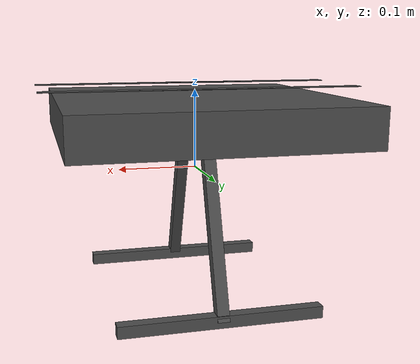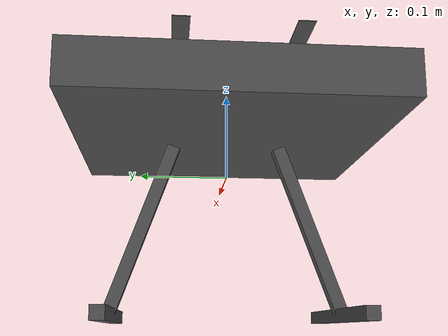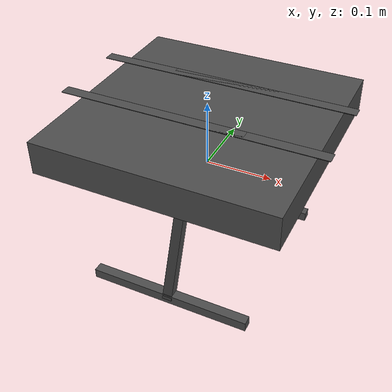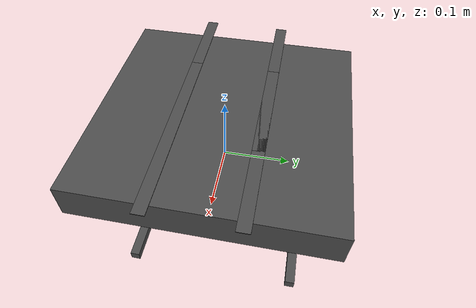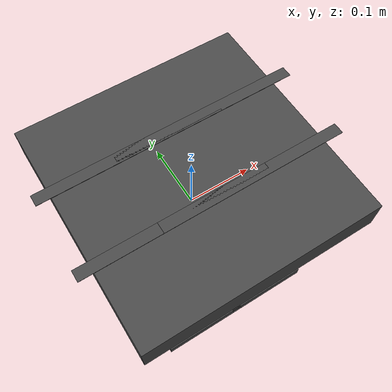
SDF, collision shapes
<?xml version="1.0" encoding="UTF-8"?>
<sdf version='1.9'>
  <model name='cognifly'>
    <include merge='true'>
      <uri>model://cognifly_base</uri>
    </include>
    <plugin filename="gz-sim-multicopter-motor-model-system" name="gz::sim::systems::MulticopterMotorModel">
      <jointName>rotor_0_joint</jointName>
      <linkName>rotor_0</linkName>
      <turningDirection>ccw</turningDirection>
      <timeConstantUp>0.0125</timeConstantUp>
      <timeConstantDown>0.025</timeConstantDown>
      <maxRotVelocity>1000.0</maxRotVelocity>
      <motorConstant>8.54858e-06</motorConstant>
      <momentConstant>0.016</momentConstant>
      <commandSubTopic>command/motor_speed</commandSubTopic>
      <motorNumber>0</motorNumber>
      <rotorDragCoefficient>8.06428e-05</rotorDragCoefficient>
      <rollingMomentCoefficient>1e-06</rollingMomentCoefficient>
      <rotorVelocitySlowdownSim>10</rotorVelocitySlowdownSim>
      <motorType>velocity</motorType>
    </plugin>
    <plugin filename="gz-sim-multicopter-motor-model-system" name="gz::sim::systems::MulticopterMotorModel">
      <jointName>rotor_1_joint</jointName>
      <linkName>rotor_1</linkName>
      <turningDirection>ccw</turningDirection>
      <timeConstantUp>0.0125</timeConstantUp>
      <timeConstantDown>0.025</timeConstantDown>
      <maxRotVelocity>1000.0</maxRotVelocity>
      <motorConstant>8.54858e-06</motorConstant>
      <momentConstant>0.016</momentConstant>
      <commandSubTopic>command/motor_speed</commandSubTopic>
      <motorNumber>1</motorNumber>
      <rotorDragCoefficient>8.06428e-05</rotorDragCoefficient>
      <rollingMomentCoefficient>1e-06</rollingMomentCoefficient>
      <rotorVelocitySlowdownSim>10</rotorVelocitySlowdownSim>
      <motorType>velocity</motorType>
    </plugin>
    <plugin filename="gz-sim-multicopter-motor-model-system" name="gz::sim::systems::MulticopterMotorModel">
      <jointName>rotor_2_joint</jointName>
      <linkName>rotor_2</linkName>
      <turningDirection>cw</turningDirection>
      <timeConstantUp>0.0125</timeConstantUp>
      <timeConstantDown>0.025</timeConstantDown>
      <maxRotVelocity>1000.0</maxRotVelocity>
      <motorConstant>8.54858e-06</motorConstant>
      <momentConstant>0.016</momentConstant>
      <commandSubTopic>command/motor_speed</commandSubTopic>
      <motorNumber>2</motorNumber>
      <rotorDragCoefficient>8.06428e-05</rotorDragCoefficient>
      <rollingMomentCoefficient>1e-06</rollingMomentCoefficient>
      <rotorVelocitySlowdownSim>10</rotorVelocitySlowdownSim>
      <motorType>velocity</motorType>
    </plugin>
    <plugin filename="gz-sim-multicopter-motor-model-system" name="gz::sim::systems::MulticopterMotorModel">
      <jointName>rotor_3_joint</jointName>
      <linkName>rotor_3</linkName>
      <turningDirection>cw</turningDirection>
      <timeConstantUp>0.0125</timeConstantUp>
      <timeConstantDown>0.025</timeConstantDown>
      <maxRotVelocity>1000.0</maxRotVelocity>
      <motorConstant>8.54858e-06</motorConstant>
      <momentConstant>0.016</momentConstant>
      <commandSubTopic>command/motor_speed</commandSubTopic>
      <motorNumber>3</motorNumber>
      <rotorDragCoefficient>8.06428e-05</rotorDragCoefficient>
      <rollingMomentCoefficient>1e-06</rollingMomentCoefficient>
      <rotorVelocitySlowdownSim>10</rotorVelocitySlowdownSim>
      <motorType>velocity</motorType>
    </plugin>
  </model>
</sdf>

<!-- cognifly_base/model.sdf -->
<sdf version='1.9'>
  <model name='cognifly_base'>
    <pose>0 0 0.06 0 0 0</pose>
    <self_collide>false</self_collide>
    <static>false</static>
    <link name="base_link">
      <inertial>
        <pose>0 0 -0.02 0 0 0</pose>
        <mass>0.250</mass>
        <inertia>
          <ixx>0.000677</ixx>
          <ixy>0</ixy>
          <ixz>0</ixz>
          <iyy>0.000677</iyy>
          <iyz>0</iyz>
          <izz>0.00125</izz>
        </inertia>
      </inertial>
      <gravity>true</gravity>
      <velocity_decay/>
      <visual name="base_link_visual">
        <pose>0 0 0 0 0 0</pose>
        <geometry>
          <mesh>
            <scale>1 1 1</scale>
            <uri>model://cognifly_base/meshes/Cognifly.dae</uri>
          </mesh>
        </geometry>
        <material>
          <script>
            <name>Gazebo/DarkGrey</name>
            <uri>file://media/materials/scripts/gazebo.material</uri>
          </script>
        </material>
      </visual>
      <collision name="base_link_collision_0">
        <pose>0 0 .007 0 0 0</pose>
        <geometry>
          <box>
            <size>0.35355339059327373 0.35355339059327373 0.05</size>
          </box>
        </geometry>
        <surface>
          <contact>
            <ode>
              <min_depth>0.001</min_depth>
              <max_vel>0</max_vel>
            </ode>
          </contact>
          <friction>
            <ode/>
          </friction>
        </surface>
      </collision>
      <collision name="base_link_collision_1">
        <pose>0 -0.098 -.123 -0.35 0 0</pose>
        <geometry>
          <box>
            <size>0.015 0.015 0.21</size>
          </box>
        </geometry>
        <surface>
          <contact>
            <ode>
              <min_depth>0.001</min_depth>
              <max_vel>0</max_vel>
            </ode>
          </contact>
          <friction>
            <ode/>
          </friction>
        </surface>
      </collision>
      <collision name="base_link_collision_2">
        <pose>0 0.098 -.123 0.35 0 0</pose>
        <geometry>
          <box>
            <size>0.015 0.015 0.21</size>
          </box>
        </geometry>
        <surface>
          <contact>
            <ode>
              <min_depth>0.001</min_depth>
              <max_vel>0</max_vel>
            </ode>
          </contact>
          <friction>
            <ode/>
          </friction>
        </surface>
      </collision>
      <collision name="base_link_collision_3">
        <pose>0 -0.132 -.2195 0 0 0</pose>
        <geometry>
          <box>
            <size>0.25 0.015 0.015</size>
          </box>
        </geometry>
        <surface>
          <contact>
            <ode>
              <min_depth>0.001</min_depth>
              <max_vel>0</max_vel>
            </ode>
          </contact>
          <friction>
            <ode/>
          </friction>
        </surface>
      </collision>
      <collision name="base_link_collision_4">
        <pose>0 0.132 -.2195 0 0 0</pose>
        <geometry>
          <box>
            <size>0.25 0.015 0.015</size>
          </box>
        </geometry>
        <surface>
          <contact>
            <ode>
              <min_depth>0.001</min_depth>
              <max_vel>0</max_vel>
            </ode>
          </contact>
          <friction>
            <ode/>
          </friction>
        </surface>
      </collision>
      <sensor name="air_pressure_sensor" type="air_pressure">
        <always_on>1</always_on>
        <update_rate>50</update_rate>
        <air_pressure>
          <!-- Noise modeled after BMP390 -->
          <pressure>
            <noise type="gaussian">
              <mean>0</mean>
              <stddev>3</stddev>
            </noise>
          </pressure>
        </air_pressure>
      </sensor>
      <sensor name="magnetometer_sensor" type="magnetometer">
        <always_on>1</always_on>
        <update_rate>100</update_rate>
        <magnetometer>
          <x>
            <noise type="gaussian">
              <stddev>0.0001</stddev>
            </noise>
          </x>
          <y>
            <noise type="gaussian">
              <stddev>0.0001</stddev>
            </noise>
          </y>
          <z>
            <noise type="gaussian">
              <stddev>0.0001</stddev>
            </noise>
          </z>
        </magnetometer>
      </sensor>
      <sensor name="imu_sensor" type="imu">
        <always_on>1</always_on>
        <update_rate>250</update_rate>
        <imu>
          <angular_velocity>
            <!-- Noise modeled after IIM42653 -->
            <!-- 0.05 deg/s converted to rad/s -->
            <x>
              <noise type="gaussian">
                <mean>0.0</mean>
                <stddev>0.0008726646</stddev>
              </noise>
            </x>
            <y>
              <noise type="gaussian">
                <mean>0.0</mean>
                <stddev>0.0008726646</stddev>
              </noise>
            </y>
            <z>
              <noise type="gaussian">
                <mean>0.0</mean>
                <stddev>0.0008726646</stddev>
              </noise>
            </z>
          </angular_velocity>
          <linear_acceleration>
            <!-- Noise modeled after IIM42653 -->
            <!-- X & Y axis: 0.65 mg-rms converted to m/ss -->
            <x>
              <noise type="gaussian">
                <mean>0.0</mean>
                <stddev>0.00637</stddev>
              </noise>
            </x>
            <y>
              <noise type="gaussian">
                <mean>0.0</mean>
                <stddev>0.00637</stddev>
              </noise>
            </y>
            <!-- Z axis: 0.70 mg-rms converted to m/ss-->
            <z>
              <noise type="gaussian">
                <mean>0.0</mean>
                <stddev>0.00686</stddev>
              </noise>
            </z>
          </linear_acceleration>
        </imu>
      </sensor>
      <sensor name="navsat_sensor" type="navsat">
        <always_on>1</always_on>
        <update_rate>30</update_rate>
      </sensor>
    </link>
    <link name="rotor_0">
      <gravity>true</gravity>
      <self_collide>false</self_collide>
      <velocity_decay/>
      <pose>0.058577 -0.058577 0.045 0 0 0</pose>
      <inertial>
          <mass>0.016076923076923075</mass>
          <inertia>
            <ixx>3.8464910483993325e-07</ixx>
            <iyy>2.6115851691700804e-05</iyy>
            <izz>2.649858234714004e-05</izz>
          </inertia>
        </inertial>
      <visual name="rotor_0_visual">
        <pose>-0.006285714 -0.041824176 -0.016 0 0 0</pose>
        <geometry>
          <mesh>
            <scale>0.241758242 0.241758242 0.241758242</scale>
            <uri>model://cognifly_base/meshes/1345_prop_ccw.stl</uri>
          </mesh>
        </geometry>
        <material>
          <script>
            <name>Gazebo/DarkGrey</name>
            <uri>file://media/materials/scripts/gazebo.material</uri>
          </script>
        </material>
      </visual>
      <visual name="rotor_0_visual_motor_bell">
        <pose>0 0 -.032 0 0 0</pose>
        <geometry>
          <mesh>
            <scale>0.5 0.5 0.5</scale>
            <uri>model://cognifly_base/meshes/5010Bell.dae</uri>
          </mesh>
        </geometry>
      </visual>
      <collision name="rotor_0_collision">
        <pose>0 0 0 0 0 0 </pose>
        <geometry>
          <box>
            <size>0.2792307692307692 0.016923076923076923 0.0008461538461538462</size>
          </box>
        </geometry>
        <surface>
          <contact>
            <ode>
              <min_depth>0.001</min_depth>
              <max_vel>0</max_vel>
            </ode>
          </contact>
          <friction>
            <ode/>
          </friction>
        </surface>
      </collision>
    </link>
    <joint name="rotor_0_joint" type="revolute">
      <parent>base_link</parent>
      <child>rotor_0</child>
      <axis>
        <xyz>0 0 1</xyz>
        <limit>
          <lower>-1e+16</lower>
          <upper>1e+16</upper>
        </limit>
        <dynamics>
          <spring_reference>0</spring_reference>
          <spring_stiffness>0</spring_stiffness>
        </dynamics>
      </axis>
    </joint>
    <link name="rotor_1">
      <gravity>true</gravity>
      <self_collide>false</self_collide>
      <velocity_decay/>
      <pose>-0.058577 0.058577 0.045 0 0 0</pose>
      <inertial>
          <mass>0.016076923076923075</mass>
          <inertia>
            <ixx>3.8464910483993325e-07</ixx>
            <iyy>2.6115851691700804e-05</iyy>
            <izz>2.649858234714004e-05</izz>
          </inertia>
        </inertial>
      <visual name="rotor_1_visual">
        <pose>-0.006285714 -0.041824176 -0.016 0 0 0</pose>
        <geometry>
          <mesh>
            <scale>0.241758242 0.241758242 0.241758242</scale>
            <uri>model://cognifly_base/meshes/1345_prop_ccw.stl</uri>
          </mesh>
        </geometry>
        <material>
          <script>
            <name>Gazebo/DarkGrey</name>
            <uri>file://media/materials/scripts/gazebo.material</uri>
          </script>
        </material>
      </visual>
      <visual name="rotor_1_visual_motor_top">
        <pose>0 0 -.032 0 0 0</pose>
        <geometry>
          <mesh>
            <scale>0.5 0.5 0.5</scale>
            <uri>model://cognifly_base/meshes/5010Bell.dae</uri>
          </mesh>
        </geometry>
      </visual>
      <collision name="rotor_1_collision">
        <pose>0 0 0 0 0 0 </pose>
        <geometry>
          <box>
            <size>0.2792307692307692 0.016923076923076923 0.0008461538461538462</size>
          </box>
        </geometry>
        <surface>
          <contact>
            <ode>
              <min_depth>0.001</min_depth>
              <max_vel>0</max_vel>
            </ode>
          </contact>
          <friction>
            <ode/>
          </friction>
        </surface>
      </collision>
    </link>
    <joint name="rotor_1_joint" type="revolute">
      <parent>base_link</parent>
      <child>rotor_1</child>
      <axis>
        <xyz>0 0 1</xyz>
        <limit>
          <lower>-1e+16</lower>
          <upper>1e+16</upper>
        </limit>
        <dynamics>
          <spring_reference>0</spring_reference>
          <spring_stiffness>0</spring_stiffness>
        </dynamics>
      </axis>
    </joint>
    <link name="rotor_2">
      <gravity>true</gravity>
      <self_collide>false</self_collide>
      <velocity_decay/>
      <pose>0.058577 0.058577 0.045 0 0 0</pose>
      <inertial>
          <mass>0.016076923076923075</mass>
          <inertia>
            <ixx>3.8464910483993325e-07</ixx>
            <iyy>2.6115851691700804e-05</iyy>
            <izz>2.649858234714004e-05</izz>
          </inertia>
        </inertial>
      <visual name="rotor_2_visual">
        <pose>-0.006285714 -0.041824176 -0.016 0 0 0</pose>
        <geometry>
          <mesh>
            <scale>0.241758242 0.241758242 0.241758242</scale>
            <uri>model://cognifly_base/meshes/1345_prop_cw.stl</uri>
          </mesh>
        </geometry>
        <material>
          <script>
            <name>Gazebo/DarkGrey</name>
            <uri>file://media/materials/scripts/gazebo.material</uri>
          </script>
        </material>
      </visual>
      <visual name="rotor_2_visual_motor_top">
        <pose>0 0 -.032 0 0 0</pose>
        <geometry>
          <mesh>
            <scale>0.5 0.5 0.5</scale>
            <uri>model://cognifly_base/meshes/5010Bell.dae</uri>
          </mesh>
        </geometry>
      </visual>
      <collision name="rotor_2_collision">
        <pose>0 0 0 0 0 0 </pose>
        <geometry>
          <box>
            <size>0.2792307692307692 0.016923076923076923 0.0008461538461538462</size>
          </box>
        </geometry>
        <surface>
          <contact>
            <ode>
              <min_depth>0.001</min_depth>
              <max_vel>0</max_vel>
            </ode>
          </contact>
          <friction>
            <ode/>
          </friction>
        </surface>
      </collision>
    </link>
    <joint name="rotor_2_joint" type="revolute">
      <parent>base_link</parent>
      <child>rotor_2</child>
      <axis>
        <xyz>0 0 1</xyz>
        <limit>
          <lower>-1e+16</lower>
          <upper>1e+16</upper>
        </limit>
        <dynamics>
          <spring_reference>0</spring_reference>
          <spring_stiffness>0</spring_stiffness>
        </dynamics>
      </axis>
    </joint>
    <link name="rotor_3">
      <gravity>true</gravity>
      <self_collide>false</self_collide>
      <velocity_decay/>
      <pose>-0.058577 -0.058577 0.045 0 0 0</pose>
      <inertial>
          <mass>0.016076923076923075</mass>
          <inertia>
            <ixx>3.8464910483993325e-07</ixx>
            <iyy>2.6115851691700804e-05</iyy>
            <izz>2.649858234714004e-05</izz>
          </inertia>
        </inertial>
      <visual name="rotor_3_visual">
        <pose>-0.006285714 -0.041824176 -0.016 0 0 0</pose>
        <geometry>
          <mesh>
            <scale>0.241758242 0.241758242 0.241758242</scale>
            <uri>model://cognifly_base/meshes/1345_prop_cw.stl</uri>
          </mesh>
        </geometry>
        <material>
          <script>
            <name>Gazebo/DarkGrey</name>
            <uri>file://media/materials/scripts/gazebo.material</uri>
          </script>
        </material>
      </visual>
      <visual name="rotor_3_visual_motor_top">
        <pose>0 0 -.032 0 0 0</pose>
        <geometry>
          <mesh>
            <scale>0.5 0.5 0.5</scale>
            <uri>model://cognifly_base/meshes/5010Bell.dae</uri>
          </mesh>
        </geometry>
      </visual>
      <collision name="rotor_3_collision">
        <pose>0 0 0 0 0 0 </pose>
        <geometry>
          <box>
            <size>0.2792307692307692 0.016923076923076923 0.0008461538461538462</size>
          </box>
        </geometry>
        <surface>
          <contact>
            <ode>
              <min_depth>0.001</min_depth>
              <max_vel>0</max_vel>
            </ode>
          </contact>
          <friction>
            <ode/>
          </friction>
        </surface>
      </collision>
    </link>
    <joint name="rotor_3_joint" type="revolute">
      <parent>base_link</parent>
      <child>rotor_3</child>
      <axis>
        <xyz>0 0 1</xyz>
        <limit>
          <lower>-1e+16</lower>
          <upper>1e+16</upper>
        </limit>
        <dynamics>
          <spring_reference>0</spring_reference>
          <spring_stiffness>0</spring_stiffness>
        </dynamics>
      </axis>
    </joint>
  </model>
</sdf>
